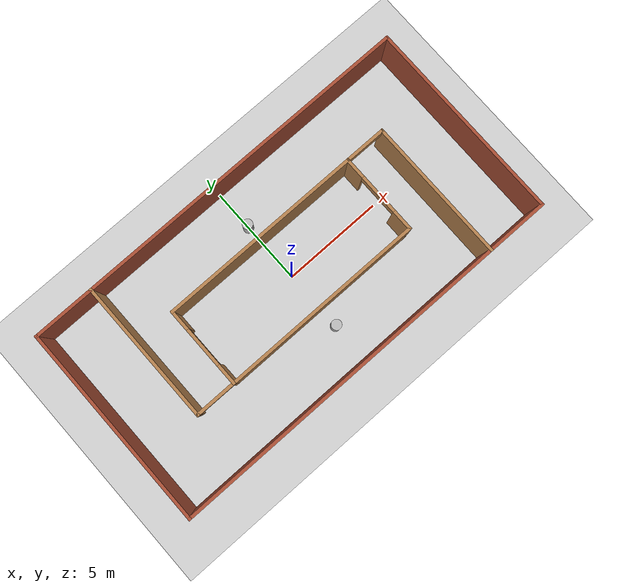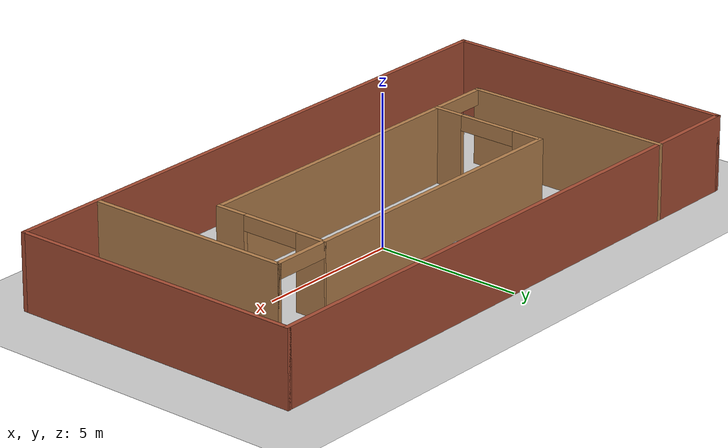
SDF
<sdf version="1.7">
 <world name="default">
  <plugin name="gazebo_ros_state" filename="libgazebo_ros_state.so">
   <ros>
    <namespace>/gazebo</namespace>
    <argument>--ros-args --remap model_states:=model_states_gazebo</argument>
    <argument>--ros-args --remap link_states:=link_states_gazebo</argument>
   </ros>
   <update_rate>50.0</update_rate>
  </plugin>
  <light name="sun" type="directional">
   <pose>0 0 10 0 -0 0</pose>
   <diffuse>0.8 0.8 0.8 1</diffuse>
   <specular>0.2 0.2 0.2 1</specular>
   <attenuation>
    <range>1000</range>
    <constant>0.9</constant>
    <linear>0.01</linear>
    <quadratic>0.001</quadratic>
   </attenuation>
   <direction>-0.5 0.1 -0.9</direction>
   <spot><inner_angle>0</inner_angle><outer_angle>0</outer_angle><falloff>0</falloff></spot>
  </light>
  <model name="ground_plane">
   <static>1</static>
   <link name="link">
    <collision name="collision">
     <geometry><plane><normal>0 0 1</normal><size>100 100</size></plane></geometry>
     <surface>
      <contact><collide_bitmask>65535</collide_bitmask></contact>
      <friction><ode><mu>100</mu><mu2>50</mu2></ode></friction>
     </surface>
    </collision>
    <visual name="visual">
     <cast_shadows>0</cast_shadows>
     <geometry><plane><normal>0 0 1</normal><size>100 100</size></plane></geometry>
     <material>
      <script><uri>file://media/materials/scripts/gazebo.material</uri><name>Gazebo/Grey</name></script>
     </material>
    </visual>
   </link>
  </model>
  <gravity>0 0 -9.8</gravity>
  <magnetic_field>6e-06 2.3e-05 -4.2e-05</magnetic_field>
  <atmosphere type="adiabatic"/>
  <physics type="ode">
   <max_step_size>0.001</max_step_size>
   <real_time_factor>1</real_time_factor>
   <real_time_update_rate>1000</real_time_update_rate>
  </physics>
  <scene><ambient>0.4 0.4 0.4 1</ambient><background>0.7 0.7 0.7 1</background><shadows>1</shadows></scene>
  <audio><device>default</device></audio>
  <spherical_coordinates>
   <surface_model>EARTH_WGS84</surface_model>
   <latitude_deg>0</latitude_deg>
   <longitude_deg>0</longitude_deg>
   <elevation>0</elevation>
   <heading_deg>0</heading_deg>
  </spherical_coordinates>
  <model name="td7_world_base">
   <link name="Wall_0">
    <collision name="Wall_0_Collision">
     <geometry><box><size>10.15 0.15 2.5</size></box></geometry>
     <pose>0 0 1.25 0 -0 0</pose>
    </collision>
    <visual name="Wall_0_Visual">
     <pose>0 0 1.25 0 -0 0</pose>
     <geometry><box><size>10.15 0.15 2.5</size></box></geometry>
     <material>
      <script><uri>file://media/materials/scripts/gazebo.material</uri><name>Gazebo/Bricks</name></script>
      <ambient>1 1 1 1</ambient>
     </material>
     <meta><layer>0</layer></meta>
    </visual>
    <pose>10 0 0 0 -0 -1.5708</pose>
   </link>
   <link name="Wall_1">
    <collision name="Wall_1_Collision">
     <geometry><box><size>20.15 0.15 2.5</size></box></geometry>
     <pose>0 0 1.25 0 -0 0</pose>
    </collision>
    <visual name="Wall_1_Visual">
     <pose>0 0 1.25 0 -0 0</pose>
     <geometry><box><size>20.15 0.15 2.5</size></box></geometry>
     <material>
      <script><uri>file://media/materials/scripts/gazebo.material</uri><name>Gazebo/Bricks</name></script>
      <ambient>1 1 1 1</ambient>
     </material>
     <meta><layer>0</layer></meta>
    </visual>
    <pose>0 -5 0 0 -0 3.14159</pose>
   </link>
   <link name="Wall_11">
    <pose>-5 0 0 0 -0 -1.5708</pose>
    <visual name="Wall_11_Visual_0">
     <pose>-1.5375 0 1.25 0 -0 0</pose>
     <geometry><box><size>1.075 0.15 2.5</size></box></geometry>
     <material>
      <script><uri>file://media/materials/scripts/gazebo.material</uri><name>Gazebo/Wood</name></script>
      <ambient>1 1 1 1</ambient>
     </material>
     <meta><layer>0</layer></meta>
    </visual>
    <collision name="Wall_11_Collision_0">
     <geometry><box><size>1.075 0.15 2.5</size></box></geometry>
     <pose>-1.5375 0 1.25 0 -0 0</pose>
    </collision>
    <visual name="Wall_11_Visual_1">
     <pose>1.5375 0 1.25 0 -0 0</pose>
     <geometry><box><size>1.075 0.15 2.5</size></box></geometry>
     <material>
      <script><uri>file://media/materials/scripts/gazebo.material</uri><name>Gazebo/Wood</name></script>
      <ambient>1 1 1 1</ambient>
     </material>
     <meta><layer>0</layer></meta>
    </visual>
    <collision name="Wall_11_Collision_1">
     <geometry><box><size>1.075 0.15 2.5</size></box></geometry>
     <pose>1.5375 0 1.25 0 -0 0</pose>
    </collision>
    <visual name="Wall_11_Visual_2">
     <pose>0 0 2.25 0 -0 0</pose>
     <geometry><box><size>2 0.15 0.5</size></box></geometry>
     <material>
      <script><uri>file://media/materials/scripts/gazebo.material</uri><name>Gazebo/Wood</name></script>
      <ambient>1 1 1 1</ambient>
     </material>
     <meta><layer>0</layer></meta>
    </visual>
    <collision name="Wall_11_Collision_2">
     <geometry><box><size>2 0.15 0.5</size></box></geometry>
     <pose>0 0 2.25 0 -0 0</pose>
    </collision>
   </link>
   <link name="Wall_13">
    <pose>5 0 0 0 -0 1.5708</pose>
    <visual name="Wall_13_Visual_0">
     <pose>-1.5375 0 1.25 0 -0 0</pose>
     <geometry><box><size>1.075 0.15 2.5</size></box></geometry>
     <material>
      <script><uri>file://media/materials/scripts/gazebo.material</uri><name>Gazebo/Wood</name></script>
      <ambient>1 1 1 1</ambient>
     </material>
     <meta><layer>0</layer></meta>
    </visual>
    <collision name="Wall_13_Collision_0">
     <geometry><box><size>1.075 0.15 2.5</size></box></geometry>
     <pose>-1.5375 0 1.25 0 -0 0</pose>
    </collision>
    <visual name="Wall_13_Visual_1">
     <pose>1.5375 0 1.25 0 -0 0</pose>
     <geometry><box><size>1.075 0.15 2.5</size></box></geometry>
     <material>
      <script><uri>file://media/materials/scripts/gazebo.material</uri><name>Gazebo/Wood</name></script>
      <ambient>1 1 1 1</ambient>
     </material>
     <meta><layer>0</layer></meta>
    </visual>
    <collision name="Wall_13_Collision_1">
     <geometry><box><size>1.075 0.15 2.5</size></box></geometry>
     <pose>1.5375 0 1.25 0 -0 0</pose>
    </collision>
    <visual name="Wall_13_Visual_2">
     <pose>0 0 2.25 0 -0 0</pose>
     <geometry><box><size>2 0.15 0.5</size></box></geometry>
     <material>
      <script><uri>file://media/materials/scripts/gazebo.material</uri><name>Gazebo/Wood</name></script>
      <ambient>1 1 1 1</ambient>
     </material>
     <meta><layer>0</layer></meta>
    </visual>
    <collision name="Wall_13_Collision_2">
     <geometry><box><size>2 0.15 0.5</size></box></geometry>
     <pose>0 0 2.25 0 -0 0</pose>
    </collision>
   </link>
   <link name="Wall_2">
    <collision name="Wall_2_Collision">
     <geometry><box><size>10.15 0.15 2.5</size></box></geometry>
     <pose>0 0 1.25 0 -0 0</pose>
    </collision>
    <visual name="Wall_2_Visual">
     <pose>0 0 1.25 0 -0 0</pose>
     <geometry><box><size>10.15 0.15 2.5</size></box></geometry>
     <material>
      <script><uri>file://media/materials/scripts/gazebo.material</uri><name>Gazebo/Bricks</name></script>
      <ambient>1 1 1 1</ambient>
     </material>
     <meta><layer>0</layer></meta>
    </visual>
    <pose>-10 0 0 0 -0 1.5708</pose>
   </link>
   <link name="Wall_3">
    <collision name="Wall_3_Collision">
     <geometry><box><size>20.15 0.15 2.5</size></box></geometry>
     <pose>0 0 1.25 0 -0 0</pose>
    </collision>
    <visual name="Wall_3_Visual">
     <pose>0 0 1.25 0 -0 0</pose>
     <geometry><box><size>20.15 0.15 2.5</size></box></geometry>
     <material>
      <script><uri>file://media/materials/scripts/gazebo.material</uri><name>Gazebo/Bricks</name></script>
      <ambient>1 1 1 1</ambient>
     </material>
     <meta><layer>0</layer></meta>
    </visual>
    <pose>0 5 0 0 -0 0</pose>
   </link>
   <link name="Wall_5">
    <collision name="Wall_5_Collision">
     <geometry><box><size>7.15 0.15 2.5</size></box></geometry>
     <pose>0 0 1.25 0 -0 0</pose>
    </collision>
    <visual name="Wall_5_Visual">
     <pose>0 0 1.25 0 -0 0</pose>
     <geometry><box><size>7.15 0.15 2.5</size></box></geometry>
     <material>
      <script><uri>file://media/materials/scripts/gazebo.material</uri><name>Gazebo/Wood</name></script>
      <ambient>1 1 1 1</ambient>
     </material>
     <meta><layer>0</layer></meta>
    </visual>
    <pose>-7 1.5 0 0 -0 -1.5708</pose>
   </link>
   <link name="Wall_6">
    <pose>-1 -2 0 0 -0 0</pose>
    <visual name="Wall_6_Visual_0">
     <pose>-6.0375 0 1.25 0 -0 0</pose>
     <geometry><box><size>0.075 0.15 2.5</size></box></geometry>
     <material>
      <script><uri>file://media/materials/scripts/gazebo.material</uri><name>Gazebo/Wood</name></script>
      <ambient>1 1 1 1</ambient>
     </material>
     <meta><layer>0</layer></meta>
    </visual>
    <collision name="Wall_6_Collision_0">
     <geometry><box><size>0.075 0.15 2.5</size></box></geometry>
     <pose>-6.0375 0 1.25 0 -0 0</pose>
    </collision>
    <visual name="Wall_6_Visual_1">
     <pose>1.0375 0 1.25 0 -0 0</pose>
     <geometry><box><size>10.075 0.15 2.5</size></box></geometry>
     <material>
      <script><uri>file://media/materials/scripts/gazebo.material</uri><name>Gazebo/Wood</name></script>
      <ambient>1 1 1 1</ambient>
     </material>
     <meta><layer>0</layer></meta>
    </visual>
    <collision name="Wall_6_Collision_1">
     <geometry><box><size>10.075 0.15 2.5</size></box></geometry>
     <pose>1.0375 0 1.25 0 -0 0</pose>
    </collision>
    <visual name="Wall_6_Visual_2">
     <pose>-5 0 2.25 0 -0 0</pose>
     <geometry><box><size>2 0.15 0.5</size></box></geometry>
     <material>
      <script><uri>file://media/materials/scripts/gazebo.material</uri><name>Gazebo/Wood</name></script>
      <ambient>1 1 1 1</ambient>
     </material>
     <meta><layer>0</layer></meta>
    </visual>
    <collision name="Wall_6_Collision_2">
     <geometry><box><size>2 0.15 0.5</size></box></geometry>
     <pose>-5 0 2.25 0 -0 0</pose>
    </collision>
   </link>
   <link name="Wall_8">
    <pose>1 2 0 0 -0 0</pose>
    <visual name="Wall_8_Visual_0">
     <pose>-1.0375 0 1.25 0 -0 0</pose>
     <geometry><box><size>10.075 0.15 2.5</size></box></geometry>
     <material>
      <script><uri>file://media/materials/scripts/gazebo.material</uri><name>Gazebo/Wood</name></script>
      <ambient>1 1 1 1</ambient>
     </material>
     <meta><layer>0</layer></meta>
    </visual>
    <collision name="Wall_8_Collision_0">
     <geometry><box><size>10.075 0.15 2.5</size></box></geometry>
     <pose>-1.0375 0 1.25 0 -0 0</pose>
    </collision>
    <visual name="Wall_8_Visual_1">
     <pose>6.0375 0 1.25 0 -0 0</pose>
     <geometry><box><size>0.075 0.15 2.5</size></box></geometry>
     <material>
      <script><uri>file://media/materials/scripts/gazebo.material</uri><name>Gazebo/Wood</name></script>
      <ambient>1 1 1 1</ambient>
     </material>
     <meta><layer>0</layer></meta>
    </visual>
    <collision name="Wall_8_Collision_1">
     <geometry><box><size>0.075 0.15 2.5</size></box></geometry>
     <pose>6.0375 0 1.25 0 -0 0</pose>
    </collision>
    <visual name="Wall_8_Visual_2">
     <pose>5 0 2.25 0 -0 0</pose>
     <geometry><box><size>2 0.15 0.5</size></box></geometry>
     <material>
      <script><uri>file://media/materials/scripts/gazebo.material</uri><name>Gazebo/Wood</name></script>
      <ambient>1 1 1 1</ambient>
     </material>
     <meta><layer>0</layer></meta>
    </visual>
    <collision name="Wall_8_Collision_2">
     <geometry><box><size>2 0.15 0.5</size></box></geometry>
     <pose>5 0 2.25 0 -0 0</pose>
    </collision>
   </link>
   <link name="Wall_9">
    <collision name="Wall_9_Collision">
     <geometry><box><size>7.15 0.15 2.5</size></box></geometry>
     <pose>0 0 1.25 0 -0 0</pose>
    </collision>
    <visual name="Wall_9_Visual">
     <pose>0 0 1.25 0 -0 0</pose>
     <geometry><box><size>7.15 0.15 2.5</size></box></geometry>
     <material>
      <script><uri>file://media/materials/scripts/gazebo.material</uri><name>Gazebo/Wood</name></script>
      <ambient>1 1 1 1</ambient>
     </material>
     <meta><layer>0</layer></meta>
    </visual>
    <pose>7 -1.5 0 0 -0 -1.5708</pose>
   </link>
   <static>1</static>
  </model>
  <model name="obstacle1">
   <link name="link">
    <collision name="collision">
     <geometry><cylinder><radius>0.25</radius><length>1</length></cylinder></geometry>
    </collision>
    <visual name="visual">
     <geometry><cylinder><radius>0.25</radius><length>1</length></cylinder></geometry>
    </visual>
    <inertial>
     <inertia><ixx>1</ixx><ixy>0</ixy><ixz>0</ixz><iyy>1</iyy><iyz>0</iyz><izz>1</izz></inertia>
     <mass>1</mass>
    </inertial>
   </link>
   <pose>-0 3 0.499999 0 -0 4e-06</pose>
  </model>
  <model name="obstacle2">
   <link name="link">
    <collision name="collision">
     <geometry><cylinder><radius>0.25</radius><length>1</length></cylinder></geometry>
    </collision>
    <visual name="visual">
     <geometry><cylinder><radius>0.25</radius><length>1</length></cylinder></geometry>
    </visual>
    <inertial>
     <inertia><ixx>1</ixx><ixy>0</ixy><ixz>0</ixz><iyy>1</iyy><iyz>0</iyz><izz>1</izz></inertia>
     <mass>1</mass>
    </inertial>
   </link>
   <pose>-0 -3 0.499999 0 -0 6e-06</pose>
  </model>
 </world>
</sdf>
